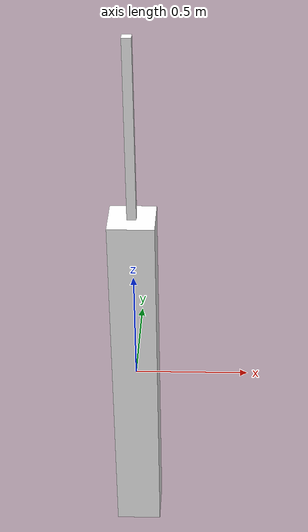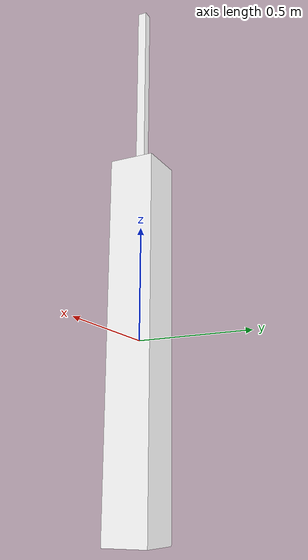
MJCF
<mujoco>
   <worldbody>
        <geom name="mastil" type="box" size="0.1 0.1 0.8" rgba="5 1 1 1"/>
        <body name="brazo" pos="0 0 0.8">
            <inertial pos="0 0 0.4" mass="1" diaginertia="1 1 1"/>
            <geom name="brazo" type="box" size="0.02 0.02 0.4" pos="0 0 0.4" rgba="5 1 1 1" contype="2" conaffinity="2"/>
            <joint name="articulacion" type="hinge" axis="0 1 0" damping="0.5" frictionloss="0"/>
        </body>
    </worldbody>

    <actuator>
        <motor name="motor" joint="articulacion" ctrllimited="true" ctrlrange="-3.92 3.92"/>
    </actuator>
</mujoco>
